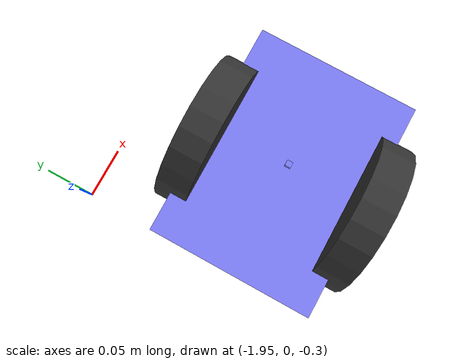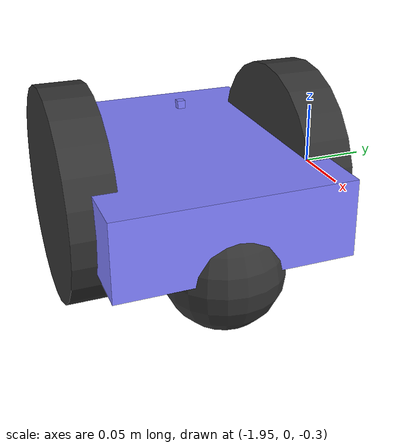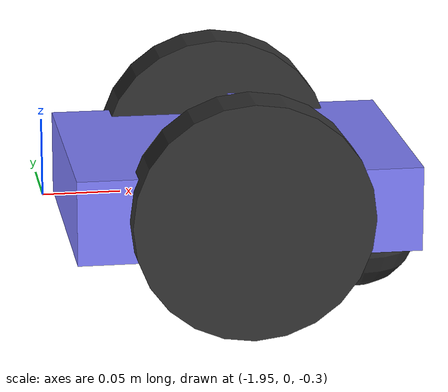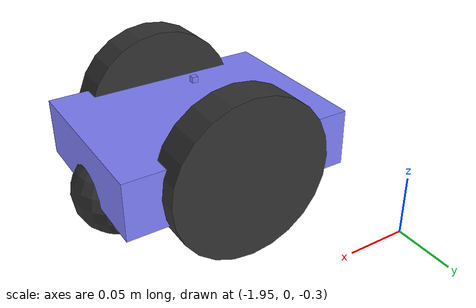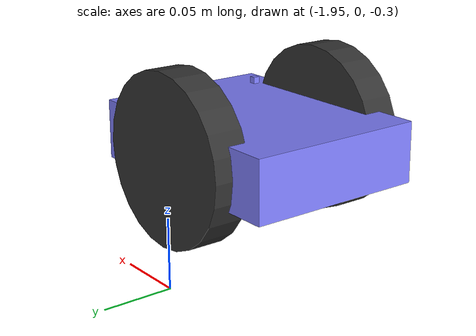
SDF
<?xml version="1.0" ?>
<sdf version="1.8">
    <model name='model_wheelset_rear_right'>
      <link name='base_link_2'>
        <pose>-1.85 -0.15 -0.20 0 -0 0</pose>
        <inertial>
          <mass>50</mass>
          <inertia>
            <ixx>0.126164</ixx>
            <ixy>0</ixy>
            <ixz>0</ixz>
            <iyy>0.416519</iyy>
            <iyz>0</iyz>
            <izz>0.481014</izz>
          </inertia>
        </inertial>
        <visual name='visual_base_link_1'>
          <geometry>
            <box>
              <size>0.005 0.005 0.005</size>
            </box>
          </geometry>
          <material>
            <ambient>0.5 0.5 1.0 1</ambient>
            <diffuse>0.5 0.5 1.0 1</diffuse>
            <specular>0.0 0.0 1.0 1</specular>
          </material>
        </visual>
        <collision name='collision_base_link_1'>
          <geometry>
            <box>
              <size>0.005 0.005 0.005</size>
            </box>
          </geometry>
        </collision>
      </link>

      <link name='wheelset_rear_right'>
        <pose>-1.85 -0.15 -0.25 0 -0 0</pose>
        <inertial>
          <mass>4.8</mass>
          <inertia>
            <ixx>0.126164</ixx>
            <ixy>0</ixy>
            <ixz>0</ixz>
            <iyy>0.416519</iyy>
            <iyz>0</iyz>
            <izz>0.481014</izz>
          </inertia>
        </inertial>
        <visual name='wheelset_rear_right_visual_base_link'>
          <geometry>
            <box>
              <size>0.2 0.15 0.05</size>
            </box>
          </geometry>
          <material>
            <ambient>0.5 0.5 1.0 1</ambient>
            <diffuse>0.5 0.5 1.0 1</diffuse>
            <specular>0.0 0.0 1.0 1</specular>
          </material>
        </visual>
        <collision name='wheelset_rear_right_collision_base_link'>
          <geometry>
            <box>
              <size>0.2 0.15 0.05</size>
            </box>
          </geometry>
        </collision>
      </link>

      <link name='wheelset_rear_right_left_wheel'>
        <pose>-1.85 -0.075 -0.25 -1.5707 0 0</pose>
        <inertial>
          <mass>0.2</mass>
          <inertia>
            <ixx>0.145833</ixx>
            <ixy>0</ixy>
            <ixz>0</ixz>
            <iyy>0.145833</iyy>
            <iyz>0</iyz>
            <izz>0.125</izz>
          </inertia>
        </inertial>
        <visual name='wheelset_rear_right_visual_left_wheel'>
          <geometry>
            <cylinder>
            <radius>0.07</radius>
            <length>0.03</length>
            </cylinder>
          </geometry>
          <material>
            <ambient>0.2 0.2 0.2 1</ambient>
            <diffuse>0.2 0.2 0.2 1</diffuse>
            <specular>0.2 0.2 0.2 1</specular>
          </material>
        </visual>
        <collision name='wheelset_rear_right_collision_left_wheel'>
          <geometry>
            <sphere>
              <radius>0.07</radius>
            </sphere>
          </geometry>
        </collision>
      </link>

      <link name='wheelset_rear_right_right_wheel'>
        <pose>-1.85 -0.225 -0.25 -1.5707 0 0</pose>
        <inertial>
          <mass>0.2</mass>
          <inertia>
            <ixx>0.145833</ixx>
            <ixy>0</ixy>
            <ixz>0</ixz>
            <iyy>0.145833</iyy>
            <iyz>0</iyz>
            <izz>0.125</izz>
          </inertia>
        </inertial>
        <visual name='wheelset_rear_right_visual_right_wheel'>
          <geometry>
            <cylinder>
            <radius>0.07</radius>
            <length>0.03</length>
            </cylinder>
          </geometry>
          <material>
            <ambient>0.2 0.2 0.2 1</ambient>
            <diffuse>0.2 0.2 0.2 1</diffuse>
            <specular>0.2 0.2 0.2 1</specular>
          </material>
        </visual>
        <collision name='wheelset_rear_right_collision_right_wheel'>
          <geometry>
            <sphere>
              <radius>0.07</radius>
            </sphere>
          </geometry>
        </collision>
      </link>

      <joint name='wheelset_rear_right_left_wheel_joint' type='revolute'>
        <parent>wheelset_rear_right</parent>
        <child>wheelset_rear_right_left_wheel</child>
        <axis>
          <xyz>0 0 1</xyz>
          <limit>
            <lower>-1.79769e+308</lower>
            <upper>1.79769e+308</upper>
          </limit>
        </axis>
      </joint>

      <joint name='wheelset_rear_right_right_wheel_joint' type='revolute'>
        <parent>wheelset_rear_right</parent>
        <child>wheelset_rear_right_right_wheel</child>
        <axis>
          <xyz>0 0 1</xyz>
          <limit>
            <lower>-1.79769e+308</lower>
            <upper>1.79769e+308</upper>
          </limit>
        </axis>
      </joint>

      <!-- Joint controller plugin -->
      <plugin name="gz::sim::systems::JointController" filename="gz-sim-joint-controller-system">
        <joint_name>wheelset_rear_right_left_wheel_joint</joint_name>
      </plugin>

      <plugin name="gz::sim::systems::JointController" filename="gz-sim-joint-controller-system">
        <joint_name>wheelset_rear_right_right_wheel_joint</joint_name>
      </plugin>

    <!-- REAR RIGHT -->
    <joint name="wheelset_rear_right_revolute_joint" type="revolute">
      <parent>base_link_2</parent>
      <child>wheelset_rear_right</child>
      <axis>
        <xyz>0 0 1</xyz>
        <limit>
          <lower>-2.007</lower>
          <upper>2.007</upper>
        </limit>
        <dynamics>
          <damping>40</damping>
          <friction>0.6</friction>
        </dynamics>
      </axis>
    </joint>

    <!-- Caster -->

     <link name='caster_2'>
        <pose>-1.775 -0.15 -0.28 0 -0 0</pose>
        <inertial>
          <mass>0.1</mass>
          <inertia>
            <ixx>0.1</ixx>
            <ixy>0</ixy>
            <ixz>0</ixz>
            <iyy>0.1</iyy>
            <iyz>0</iyz>
            <izz>0.1</izz>
          </inertia>
        </inertial>
        <visual name='visual_caster'>
          <geometry>
            <sphere>
              <radius>0.038</radius>
            </sphere>
          </geometry>
          <material>
            <ambient>0.2 0.2 0.2 1</ambient>
            <diffuse>0.2 0.2 0.2 1</diffuse>
            <specular>0.2 0.2 0.2 1</specular>
          </material>
        </visual>
        <collision name='collision_caster'>
          <geometry>
            <sphere>
              <radius>0.038</radius>
            </sphere>
          </geometry>
        </collision>
      </link>

      <joint name='caster_2_wheel' type='ball'>
        <parent>wheelset_rear_right</parent>
        <child>caster_2</child>
      </joint>

    </model>
</sdf>
